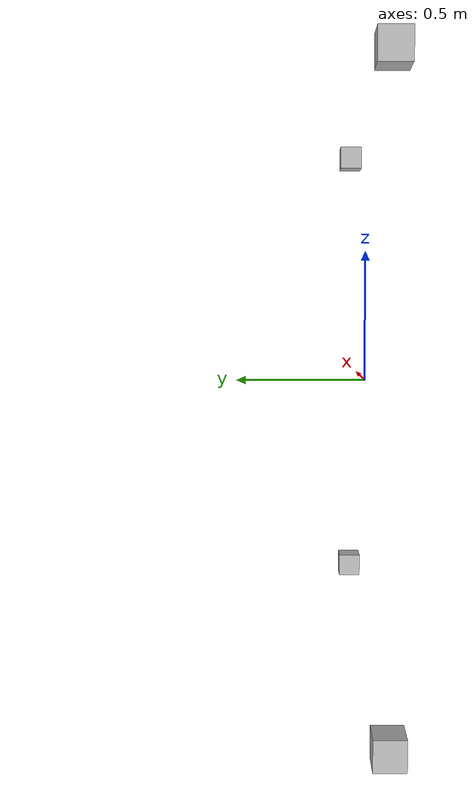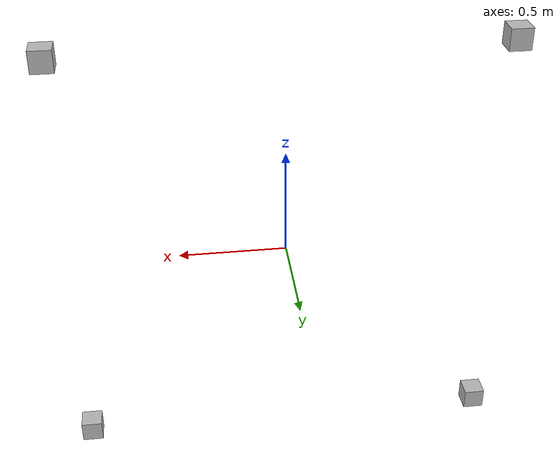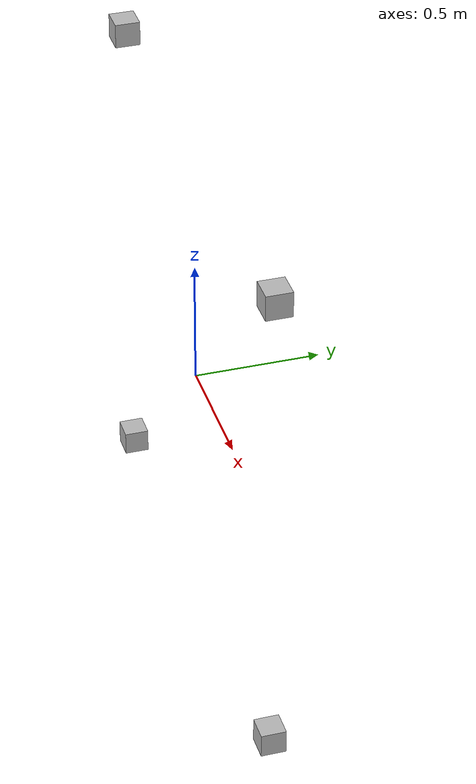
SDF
<sdf version="1.7">
  <model name="kinematic_loop_entity">
    <link name="link_01">
      <inertial>
        <inertia>
          <ixx>0.0001666666666666667</ixx>
          <iyy>0.0001666666666666667</iyy>
          <izz>0.0001666666666666667</izz>
          <ixy>0.0</ixy>
          <ixz>0.0</ixz>
          <iyz>0.0</iyz>
        </inertia>
        <mass>0.1</mass>
      </inertial>
      <pose relative_to="connect_41/link_01">0.0 0.0 0.0 0.0 0.0 0.0</pose>
      <visual name="viz_link01">
        <geometry>
          <box>
            <size>0.1 0.1 0.1</size>
          </box>
        </geometry>
      </visual>
      <collision name="coll_link_01">
        <geometry>
          <box>
            <size>0.1 0.1 0.1</size>
          </box>
        </geometry>
      </collision>
    </link>
    <link name="link_02">
      <inertial>
        <inertia>
          <ixx>0.0001666666666666667</ixx>
          <iyy>0.0001666666666666667</iyy>
          <izz>0.0001666666666666667</izz>
          <ixy>0.0</ixy>
          <ixz>0.0</ixz>
          <iyz>0.0</iyz>
        </inertia>
        <mass>0.1</mass>
      </inertial>
      <pose relative_to="connect_12/link_02">0.0 0.0 0.0 0.0 0.0 0.0</pose>
      <visual name="viz_link_02">
        <geometry>
          <box>
            <size>0.1 0.1 0.1</size>
          </box>
        </geometry>
      </visual>
      <collision name="coll_link_02">
        <geometry>
          <box>
            <size>0.1 0.1 0.1</size>
          </box>
        </geometry>
      </collision>
    </link>
    <link name="link_03">
      <inertial>
        <inertia>
          <ixx>0.0001666666666666667</ixx>
          <iyy>0.0001666666666666667</iyy>
          <izz>0.0001666666666666667</izz>
          <ixy>0.0</ixy>
          <ixz>0.0</ixz>
          <iyz>0.0</iyz>
        </inertia>
        <mass>0.1</mass>
      </inertial>
      <pose relative_to="connect_23/link_03">0.0 0.0 0.0 0.0 0.0 0.0</pose>
      <visual name="viz_link_03">
        <geometry>
          <box>
            <size>0.1 0.1 0.1</size>
          </box>
        </geometry>
      </visual>
      <collision name="coll_link_03">
        <geometry>
          <box>
            <size>0.1 0.1 0.1</size>
          </box>
        </geometry>
      </collision>
    </link>
    <link name="link_04">
      <inertial>
        <inertia>
          <ixx>0.0001666666666666667</ixx>
          <iyy>0.0001666666666666667</iyy>
          <izz>0.0001666666666666667</izz>
          <ixy>0.0</ixy>
          <ixz>0.0</ixz>
          <iyz>0.0</iyz>
        </inertia>
        <mass>0.1</mass>
      </inertial>
      <pose relative_to="connect_34/link_04">0.0 0.0 0.0 0.0 0.0 0.0</pose>
      <visual name="viz_link_04">
        <geometry>
          <box>
            <size>0.1 0.1 0.1</size>
          </box>
        </geometry>
      </visual>
      <collision name="coll_link_04">
        <geometry>
          <box>
            <size>0.1 0.1 0.1</size>
          </box>
        </geometry>
      </collision>
    </link>
    <joint name="connect_12/link_02" type="revolute">
      <pose relative_to="link_01">1.0 0.0 0.0 0.0 0.0 0.0</pose>
      <parent>link_01</parent>
      <child>link_02</child>
      <axis>
        <xyz>0.0 0.0 1.0</xyz>
      </axis>
    </joint>
    <joint name="connect_23/link_03" type="revolute">
      <pose relative_to="link_02">0.0 0.0 1.0 0.0 0.0 0.0</pose>
      <parent>link_02</parent>
      <child>link_03</child>
      <axis>
        <xyz>0.0 0.0 1.0</xyz>
      </axis>
    </joint>
    <joint name="connect_34/link_04" type="revolute">
      <pose relative_to="link_03">-1.0 0.0 0.0 0.0 0.0 0.0</pose>
      <parent>link_03</parent>
      <child>link_04</child>
      <axis>
        <xyz>0.0 0.0 1.0</xyz>
      </axis>
    </joint>
    <joint name="connect_41/link_01" type="revolute">
      <pose relative_to="link_04">0.0 0.0 -1.0 0.0 0.0 0.0</pose>
      <parent>link_04</parent>
      <child>link_01</child>
      <axis>
        <xyz>0.0 0.0 1.0</xyz>
      </axis>
    </joint>
  </model>
</sdf>
